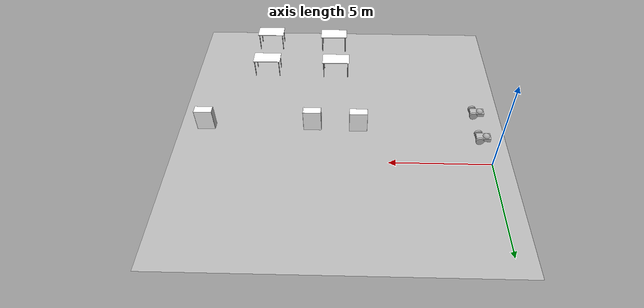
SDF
<sdf version="1.7">
 <world name="default">
  <model name="ground_plane">
   <static>1</static>
   <link name="link">
    <collision name="collision">
     <geometry><plane><normal>0 0 1</normal><size>100 100</size></plane></geometry>
     <surface>
      <contact><collide_bitmask>65535</collide_bitmask></contact>
      <friction><ode><mu>100</mu><mu2>50</mu2></ode></friction>
     </surface>
    </collision>
    <visual name="visual">
     <cast_shadows>0</cast_shadows>
     <geometry><plane><normal>0 0 1</normal><size>100 100</size></plane></geometry>
     <material>
      <ambient>0.7 0.7 0.7 1.0</ambient>
      <diffuse>0.7 0.7 0.7 1.0</diffuse>
      <specular>0.01 0.01 0.01 1.0</specular>
     </material>
    </visual>
   </link>
  </model>
  <model name="bookshelf">
   <static>1</static>
   <link name="link">
    <inertial><mass>1</mass></inertial>
    <collision name="back">
     <pose>0 0.005 0.6 0 -0 0</pose>
     <geometry><box><size>0.9 0.01 1.2</size></box></geometry>
    </collision>
    <visual name="visual1">
     <pose>0 0.005 0.6 0 -0 0</pose>
     <geometry><box><size>0.9 0.01 1.2</size></box></geometry>
     <material>
      <diffuse>1.0 1.0 1.0</diffuse>
      <specular>1.0 1.0 1.0</specular>
      <ambient>1.0 1.0 1.0</ambient>
      <pbr><metal><albedo_map>model://wall/materials/textures/wood.jpg</albedo_map></metal></pbr>
     </material>
    </visual>
    <collision name="left_side">
     <pose>0.45 -0.195 0.6 0 -0 0</pose>
     <geometry><box><size>0.02 0.4 1.2</size></box></geometry>
    </collision>
    <visual name="visual2">
     <pose>0.45 -0.195 0.6 0 -0 0</pose>
     <geometry><box><size>0.02 0.4 1.2</size></box></geometry>
     <material>
      <diffuse>1.0 1.0 1.0</diffuse>
      <specular>1.0 1.0 1.0</specular>
      <ambient>1.0 1.0 1.0</ambient>
      <pbr><metal><albedo_map>model://wall/materials/textures/wood.jpg</albedo_map></metal></pbr>
     </material>
    </visual>
    <collision name="right_side">
     <pose>-0.45 -0.195 0.6 0 -0 0</pose>
     <geometry><box><size>0.02 0.4 1.2</size></box></geometry>
    </collision>
    <visual name="visual3">
     <pose>-0.45 -0.195 0.6 0 -0 0</pose>
     <geometry><box><size>0.02 0.4 1.2</size></box></geometry>
     <material>
      <diffuse>1.0 1.0 1.0</diffuse>
      <specular>1.0 1.0 1.0</specular>
      <ambient>1.0 1.0 1.0</ambient>
      <pbr><metal><albedo_map>model://wall/materials/textures/wood.jpg</albedo_map></metal></pbr>
     </material>
    </visual>
    <collision name="bottom">
     <pose>0 -0.195 0.03 0 -0 0</pose>
     <geometry><box><size>0.88 0.4 0.06</size></box></geometry>
    </collision>
    <visual name="visual4">
     <pose>0 -0.195 0.03 0 -0 0</pose>
     <geometry><box><size>0.88 0.4 0.06</size></box></geometry>
     <material>
      <diffuse>1.0 1.0 1.0</diffuse>
      <specular>1.0 1.0 1.0</specular>
      <ambient>1.0 1.0 1.0</ambient>
      <pbr><metal><albedo_map>model://wall/materials/textures/wood.jpg</albedo_map></metal></pbr>
     </material>
    </visual>
    <collision name="top">
     <pose>0 -0.195 1.19 0 -0 0</pose>
     <geometry><box><size>0.88 0.4 0.02</size></box></geometry>
    </collision>
    <visual name="visual5">
     <pose>0 -0.195 1.19 0 -0 0</pose>
     <geometry><box><size>0.88 0.4 0.02</size></box></geometry>
     <material>
      <diffuse>1.0 1.0 1.0</diffuse>
      <specular>1.0 1.0 1.0</specular>
      <ambient>1.0 1.0 1.0</ambient>
      <pbr><metal><albedo_map>model://wall/materials/textures/wood.jpg</albedo_map></metal></pbr>
     </material>
    </visual>
    <collision name="low_shelf">
     <pose>0 -0.195 0.43 0 -0 0</pose>
     <geometry><box><size>0.88 0.4 0.02</size></box></geometry>
    </collision>
    <visual name="visual6">
     <pose>0 -0.195 0.43 0 -0 0</pose>
     <geometry><box><size>0.88 0.4 0.02</size></box></geometry>
     <material>
      <diffuse>1.0 1.0 1.0</diffuse>
      <specular>1.0 1.0 1.0</specular>
      <ambient>1.0 1.0 1.0</ambient>
      <pbr><metal><albedo_map>model://wall/materials/textures/wood.jpg</albedo_map></metal></pbr>
     </material>
    </visual>
    <collision name="high_shelf">
     <pose>0 -0.195 0.8 0 -0 0</pose>
     <geometry><box><size>0.88 0.4 0.02</size></box></geometry>
    </collision>
    <visual name="visual7">
     <pose>0 -0.195 0.8 0 -0 0</pose>
     <geometry><box><size>0.88 0.4 0.02</size></box></geometry>
     <material>
      <diffuse>1.0 1.0 1.0</diffuse>
      <specular>1.0 1.0 1.0</specular>
      <ambient>1.0 1.0 1.0</ambient>
      <pbr><metal><albedo_map>model://wall/materials/textures/wood.jpg</albedo_map></metal></pbr>
     </material>
    </visual>
   </link>
   <pose>6.47527 -2.08291 0 0 -0 0</pose>
  </model>
  <model name="bookshelf_clone">
   <static>1</static>
   <link name="link">
    <inertial><mass>1</mass></inertial>
    <collision name="back">
     <pose>0 0.005 0.6 0 -0 0</pose>
     <geometry><box><size>0.9 0.01 1.2</size></box></geometry>
    </collision>
    <visual name="visual1">
     <pose>0 0.005 0.6 0 -0 0</pose>
     <geometry><box><size>0.9 0.01 1.2</size></box></geometry>
     <material>
      <diffuse>1.0 1.0 1.0</diffuse>
      <specular>1.0 1.0 1.0</specular>
      <ambient>1.0 1.0 1.0</ambient>
      <pbr><metal><albedo_map>model://wall/materials/textures/wood.jpg</albedo_map></metal></pbr>
     </material>
    </visual>
    <collision name="left_side">
     <pose>0.45 -0.195 0.6 0 -0 0</pose>
     <geometry><box><size>0.02 0.4 1.2</size></box></geometry>
    </collision>
    <visual name="visual2">
     <pose>0.45 -0.195 0.6 0 -0 0</pose>
     <geometry><box><size>0.02 0.4 1.2</size></box></geometry>
     <material>
      <diffuse>1.0 1.0 1.0</diffuse>
      <specular>1.0 1.0 1.0</specular>
      <ambient>1.0 1.0 1.0</ambient>
      <pbr><metal><albedo_map>model://wall/materials/textures/wood.jpg</albedo_map></metal></pbr>
     </material>
    </visual>
    <collision name="right_side">
     <pose>-0.45 -0.195 0.6 0 -0 0</pose>
     <geometry><box><size>0.02 0.4 1.2</size></box></geometry>
    </collision>
    <visual name="visual3">
     <pose>-0.45 -0.195 0.6 0 -0 0</pose>
     <geometry><box><size>0.02 0.4 1.2</size></box></geometry>
     <material>
      <diffuse>1.0 1.0 1.0</diffuse>
      <specular>1.0 1.0 1.0</specular>
      <ambient>1.0 1.0 1.0</ambient>
      <pbr><metal><albedo_map>model://wall/materials/textures/wood.jpg</albedo_map></metal></pbr>
     </material>
    </visual>
    <collision name="bottom">
     <pose>0 -0.195 0.03 0 -0 0</pose>
     <geometry><box><size>0.88 0.4 0.06</size></box></geometry>
    </collision>
    <visual name="visual4">
     <pose>0 -0.195 0.03 0 -0 0</pose>
     <geometry><box><size>0.88 0.4 0.06</size></box></geometry>
     <material>
      <diffuse>1.0 1.0 1.0</diffuse>
      <specular>1.0 1.0 1.0</specular>
      <ambient>1.0 1.0 1.0</ambient>
      <pbr><metal><albedo_map>model://wall/materials/textures/wood.jpg</albedo_map></metal></pbr>
     </material>
    </visual>
    <collision name="top">
     <pose>0 -0.195 1.19 0 -0 0</pose>
     <geometry><box><size>0.88 0.4 0.02</size></box></geometry>
    </collision>
    <visual name="visual5">
     <pose>0 -0.195 1.19 0 -0 0</pose>
     <geometry><box><size>0.88 0.4 0.02</size></box></geometry>
     <material>
      <diffuse>1.0 1.0 1.0</diffuse>
      <specular>1.0 1.0 1.0</specular>
      <ambient>1.0 1.0 1.0</ambient>
      <pbr><metal><albedo_map>model://wall/materials/textures/wood.jpg</albedo_map></metal></pbr>
     </material>
    </visual>
    <collision name="low_shelf">
     <pose>0 -0.195 0.43 0 -0 0</pose>
     <geometry><box><size>0.88 0.4 0.02</size></box></geometry>
    </collision>
    <visual name="visual6">
     <pose>0 -0.195 0.43 0 -0 0</pose>
     <geometry><box><size>0.88 0.4 0.02</size></box></geometry>
     <material>
      <diffuse>1.0 1.0 1.0</diffuse>
      <specular>1.0 1.0 1.0</specular>
      <ambient>1.0 1.0 1.0</ambient>
      <pbr><metal><albedo_map>model://wall/materials/textures/wood.jpg</albedo_map></metal></pbr>
     </material>
    </visual>
    <collision name="high_shelf">
     <pose>0 -0.195 0.8 0 -0 0</pose>
     <geometry><box><size>0.88 0.4 0.02</size></box></geometry>
    </collision>
    <visual name="visual7">
     <pose>0 -0.195 0.8 0 -0 0</pose>
     <geometry><box><size>0.88 0.4 0.02</size></box></geometry>
     <material>
      <diffuse>1.0 1.0 1.0</diffuse>
      <specular>1.0 1.0 1.0</specular>
      <ambient>1.0 1.0 1.0</ambient>
      <pbr><metal><albedo_map>model://wall/materials/textures/wood.jpg</albedo_map></metal></pbr>
     </material>
    </visual>
   </link>
   <pose>8.81766 -2.1308 0 0 -0 0</pose>
  </model>
  <model name="bookshelf_clone_clone">
   <static>1</static>
   <link name="link">
    <inertial><mass>1</mass></inertial>
    <collision name="back">
     <pose>0 0.005 0.6 0 -0 0</pose>
     <geometry><box><size>0.9 0.01 1.2</size></box></geometry>
    </collision>
    <visual name="visual1">
     <pose>0 0.005 0.6 0 -0 0</pose>
     <geometry><box><size>0.9 0.01 1.2</size></box></geometry>
     <material>
      <diffuse>1.0 1.0 1.0</diffuse>
      <specular>1.0 1.0 1.0</specular>
      <ambient>1.0 1.0 1.0</ambient>
      <pbr><metal><albedo_map>model://wall/materials/textures/wood.jpg</albedo_map></metal></pbr>
     </material>
    </visual>
    <collision name="left_side">
     <pose>0.45 -0.195 0.6 0 -0 0</pose>
     <geometry><box><size>0.02 0.4 1.2</size></box></geometry>
    </collision>
    <visual name="visual2">
     <pose>0.45 -0.195 0.6 0 -0 0</pose>
     <geometry><box><size>0.02 0.4 1.2</size></box></geometry>
     <material>
      <diffuse>1.0 1.0 1.0</diffuse>
      <specular>1.0 1.0 1.0</specular>
      <ambient>1.0 1.0 1.0</ambient>
      <pbr><metal><albedo_map>model://wall/materials/textures/wood.jpg</albedo_map></metal></pbr>
     </material>
    </visual>
    <collision name="right_side">
     <pose>-0.45 -0.195 0.6 0 -0 0</pose>
     <geometry><box><size>0.02 0.4 1.2</size></box></geometry>
    </collision>
    <visual name="visual3">
     <pose>-0.45 -0.195 0.6 0 -0 0</pose>
     <geometry><box><size>0.02 0.4 1.2</size></box></geometry>
     <material>
      <diffuse>1.0 1.0 1.0</diffuse>
      <specular>1.0 1.0 1.0</specular>
      <ambient>1.0 1.0 1.0</ambient>
      <pbr><metal><albedo_map>model://wall/materials/textures/wood.jpg</albedo_map></metal></pbr>
     </material>
    </visual>
    <collision name="bottom">
     <pose>0 -0.195 0.03 0 -0 0</pose>
     <geometry><box><size>0.88 0.4 0.06</size></box></geometry>
    </collision>
    <visual name="visual4">
     <pose>0 -0.195 0.03 0 -0 0</pose>
     <geometry><box><size>0.88 0.4 0.06</size></box></geometry>
     <material>
      <diffuse>1.0 1.0 1.0</diffuse>
      <specular>1.0 1.0 1.0</specular>
      <ambient>1.0 1.0 1.0</ambient>
      <pbr><metal><albedo_map>model://wall/materials/textures/wood.jpg</albedo_map></metal></pbr>
     </material>
    </visual>
    <collision name="top">
     <pose>0 -0.195 1.19 0 -0 0</pose>
     <geometry><box><size>0.88 0.4 0.02</size></box></geometry>
    </collision>
    <visual name="visual5">
     <pose>0 -0.195 1.19 0 -0 0</pose>
     <geometry><box><size>0.88 0.4 0.02</size></box></geometry>
     <material>
      <diffuse>1.0 1.0 1.0</diffuse>
      <specular>1.0 1.0 1.0</specular>
      <ambient>1.0 1.0 1.0</ambient>
      <pbr><metal><albedo_map>model://wall/materials/textures/wood.jpg</albedo_map></metal></pbr>
     </material>
    </visual>
    <collision name="low_shelf">
     <pose>0 -0.195 0.43 0 -0 0</pose>
     <geometry><box><size>0.88 0.4 0.02</size></box></geometry>
    </collision>
    <visual name="visual6">
     <pose>0 -0.195 0.43 0 -0 0</pose>
     <geometry><box><size>0.88 0.4 0.02</size></box></geometry>
     <material>
      <diffuse>1.0 1.0 1.0</diffuse>
      <specular>1.0 1.0 1.0</specular>
      <ambient>1.0 1.0 1.0</ambient>
      <pbr><metal><albedo_map>model://wall/materials/textures/wood.jpg</albedo_map></metal></pbr>
     </material>
    </visual>
    <collision name="high_shelf">
     <pose>0 -0.195 0.8 0 -0 0</pose>
     <geometry><box><size>0.88 0.4 0.02</size></box></geometry>
    </collision>
    <visual name="visual7">
     <pose>0 -0.195 0.8 0 -0 0</pose>
     <geometry><box><size>0.88 0.4 0.02</size></box></geometry>
     <material>
      <diffuse>1.0 1.0 1.0</diffuse>
      <specular>1.0 1.0 1.0</specular>
      <ambient>1.0 1.0 1.0</ambient>
      <pbr><metal><albedo_map>model://wall/materials/textures/wood.jpg</albedo_map></metal></pbr>
     </material>
    </visual>
   </link>
   <pose>14.286 -2.07708 0 0 -0 0</pose>
  </model>
  <model name="table">
   <static>1</static>
   <link name="link">
    <collision name="surface">
     <pose>0 0 1 0 -0 0</pose>
     <geometry><box><size>1.5 0.8 0.03</size></box></geometry>
     <surface><friction><ode><mu>0.6</mu><mu2>0.6</mu2></ode></friction></surface>
    </collision>
    <visual name="visual1">
     <pose>0 0 1 0 -0 0</pose>
     <geometry><box><size>1.5 0.8 0.03</size></box></geometry>
     <material>
      <diffuse>1.0 1.0 1.0</diffuse>
      <specular>1.0 1.0 1.0</specular>
      <ambient>1.0 1.0 1.0</ambient>
      <pbr><metal><albedo_map>model://wall/materials/textures/wood.jpg</albedo_map></metal></pbr>
     </material>
    </visual>
    <collision name="front_left_leg">
     <pose>0.68 0.38 0.5 0 -0 0</pose>
     <geometry><cylinder><radius>0.02</radius><length>1</length></cylinder></geometry>
    </collision>
    <visual name="front_left_leg">
     <pose>0.68 0.38 0.5 0 -0 0</pose>
     <geometry><cylinder><radius>0.02</radius><length>1</length></cylinder></geometry>
     <material>
      <ambient>0.7 0.7 0.7 1.0</ambient>
      <diffuse>0.7 0.7 0.7 1.0</diffuse>
      <specular>0.01 0.01 0.01 1.0</specular>
     </material>
    </visual>
    <collision name="front_right_leg">
     <pose>0.68 -0.38 0.5 0 -0 0</pose>
     <geometry><cylinder><radius>0.02</radius><length>1</length></cylinder></geometry>
    </collision>
    <visual name="front_right_leg">
     <pose>0.68 -0.38 0.5 0 -0 0</pose>
     <geometry><cylinder><radius>0.02</radius><length>1</length></cylinder></geometry>
     <material>
      <ambient>0.7 0.7 0.7 1.0</ambient>
      <diffuse>0.7 0.7 0.7 1.0</diffuse>
      <specular>0.01 0.01 0.01 1.0</specular>
     </material>
    </visual>
    <collision name="back_right_leg">
     <pose>-0.68 -0.38 0.5 0 -0 0</pose>
     <geometry><cylinder><radius>0.02</radius><length>1</length></cylinder></geometry>
    </collision>
    <visual name="back_right_leg">
     <pose>-0.68 -0.38 0.5 0 -0 0</pose>
     <geometry><cylinder><radius>0.02</radius><length>1</length></cylinder></geometry>
     <material>
      <ambient>0.7 0.7 0.7 1.0</ambient>
      <diffuse>0.7 0.7 0.7 1.0</diffuse>
      <specular>0.01 0.01 0.01 1.0</specular>
     </material>
    </visual>
    <collision name="back_left_leg">
     <pose>-0.68 0.38 0.5 0 -0 0</pose>
     <geometry><cylinder><radius>0.02</radius><length>1</length></cylinder></geometry>
    </collision>
    <visual name="back_left_leg">
     <pose>-0.68 0.38 0.5 0 -0 0</pose>
     <geometry><cylinder><radius>0.02</radius><length>1</length></cylinder></geometry>
     <material>
      <ambient>0.7 0.7 0.7 1.0</ambient>
      <diffuse>0.7 0.7 0.7 1.0</diffuse>
      <specular>0.01 0.01 0.01 1.0</specular>
     </material>
    </visual>
   </link>
   <pose>7.7474 -6.72268 0 0 -0 0</pose>
  </model>
  <model name="table_clone">
   <static>1</static>
   <link name="link">
    <collision name="surface">
     <pose>0 0 1 0 -0 0</pose>
     <geometry><box><size>1.5 0.8 0.03</size></box></geometry>
     <surface><friction><ode><mu>0.6</mu><mu2>0.6</mu2></ode></friction></surface>
    </collision>
    <visual name="visual1">
     <pose>0 0 1 0 -0 0</pose>
     <geometry><box><size>1.5 0.8 0.03</size></box></geometry>
     <material>
      <diffuse>1.0 1.0 1.0</diffuse>
      <specular>1.0 1.0 1.0</specular>
      <ambient>1.0 1.0 1.0</ambient>
      <pbr><metal><albedo_map>model://wall/materials/textures/wood.jpg</albedo_map></metal></pbr>
     </material>
    </visual>
    <collision name="front_left_leg">
     <pose>0.68 0.38 0.5 0 -0 0</pose>
     <geometry><cylinder><radius>0.02</radius><length>1</length></cylinder></geometry>
    </collision>
    <visual name="front_left_leg">
     <pose>0.68 0.38 0.5 0 -0 0</pose>
     <geometry><cylinder><radius>0.02</radius><length>1</length></cylinder></geometry>
     <material>
      <ambient>0.7 0.7 0.7 1.0</ambient>
      <diffuse>0.7 0.7 0.7 1.0</diffuse>
      <specular>0.01 0.01 0.01 1.0</specular>
     </material>
    </visual>
    <collision name="front_right_leg">
     <pose>0.68 -0.38 0.5 0 -0 0</pose>
     <geometry><cylinder><radius>0.02</radius><length>1</length></cylinder></geometry>
    </collision>
    <visual name="front_right_leg">
     <pose>0.68 -0.38 0.5 0 -0 0</pose>
     <geometry><cylinder><radius>0.02</radius><length>1</length></cylinder></geometry>
     <material>
      <ambient>0.7 0.7 0.7 1.0</ambient>
      <diffuse>0.7 0.7 0.7 1.0</diffuse>
      <specular>0.01 0.01 0.01 1.0</specular>
     </material>
    </visual>
    <collision name="back_right_leg">
     <pose>-0.68 -0.38 0.5 0 -0 0</pose>
     <geometry><cylinder><radius>0.02</radius><length>1</length></cylinder></geometry>
    </collision>
    <visual name="back_right_leg">
     <pose>-0.68 -0.38 0.5 0 -0 0</pose>
     <geometry><cylinder><radius>0.02</radius><length>1</length></cylinder></geometry>
     <material>
      <ambient>0.7 0.7 0.7 1.0</ambient>
      <diffuse>0.7 0.7 0.7 1.0</diffuse>
      <specular>0.01 0.01 0.01 1.0</specular>
     </material>
    </visual>
    <collision name="back_left_leg">
     <pose>-0.68 0.38 0.5 0 -0 0</pose>
     <geometry><cylinder><radius>0.02</radius><length>1</length></cylinder></geometry>
    </collision>
    <visual name="back_left_leg">
     <pose>-0.68 0.38 0.5 0 -0 0</pose>
     <geometry><cylinder><radius>0.02</radius><length>1</length></cylinder></geometry>
     <material>
      <ambient>0.7 0.7 0.7 1.0</ambient>
      <diffuse>0.7 0.7 0.7 1.0</diffuse>
      <specular>0.01 0.01 0.01 1.0</specular>
     </material>
    </visual>
   </link>
   <pose>7.93352 -9.12474 0 0 -0 0</pose>
  </model>
  <model name="table_clone_0">
   <static>1</static>
   <link name="link">
    <collision name="surface">
     <pose>0 0 1 0 -0 0</pose>
     <geometry><box><size>1.5 0.8 0.03</size></box></geometry>
     <surface><friction><ode><mu>0.6</mu><mu2>0.6</mu2></ode></friction></surface>
    </collision>
    <visual name="visual1">
     <pose>0 0 1 0 -0 0</pose>
     <geometry><box><size>1.5 0.8 0.03</size></box></geometry>
     <material>
      <diffuse>1.0 1.0 1.0</diffuse>
      <specular>1.0 1.0 1.0</specular>
      <ambient>1.0 1.0 1.0</ambient>
      <pbr><metal><albedo_map>model://wall/materials/textures/wood.jpg</albedo_map></metal></pbr>
     </material>
    </visual>
    <collision name="front_left_leg">
     <pose>0.68 0.38 0.5 0 -0 0</pose>
     <geometry><cylinder><radius>0.02</radius><length>1</length></cylinder></geometry>
    </collision>
    <visual name="front_left_leg">
     <pose>0.68 0.38 0.5 0 -0 0</pose>
     <geometry><cylinder><radius>0.02</radius><length>1</length></cylinder></geometry>
     <material>
      <ambient>0.7 0.7 0.7 1.0</ambient>
      <diffuse>0.7 0.7 0.7 1.0</diffuse>
      <specular>0.01 0.01 0.01 1.0</specular>
     </material>
    </visual>
    <collision name="front_right_leg">
     <pose>0.68 -0.38 0.5 0 -0 0</pose>
     <geometry><cylinder><radius>0.02</radius><length>1</length></cylinder></geometry>
    </collision>
    <visual name="front_right_leg">
     <pose>0.68 -0.38 0.5 0 -0 0</pose>
     <geometry><cylinder><radius>0.02</radius><length>1</length></cylinder></geometry>
     <material>
      <ambient>0.7 0.7 0.7 1.0</ambient>
      <diffuse>0.7 0.7 0.7 1.0</diffuse>
      <specular>0.01 0.01 0.01 1.0</specular>
     </material>
    </visual>
    <collision name="back_right_leg">
     <pose>-0.68 -0.38 0.5 0 -0 0</pose>
     <geometry><cylinder><radius>0.02</radius><length>1</length></cylinder></geometry>
    </collision>
    <visual name="back_right_leg">
     <pose>-0.68 -0.38 0.5 0 -0 0</pose>
     <geometry><cylinder><radius>0.02</radius><length>1</length></cylinder></geometry>
     <material>
      <ambient>0.7 0.7 0.7 1.0</ambient>
      <diffuse>0.7 0.7 0.7 1.0</diffuse>
      <specular>0.01 0.01 0.01 1.0</specular>
     </material>
    </visual>
    <collision name="back_left_leg">
     <pose>-0.68 0.38 0.5 0 -0 0</pose>
     <geometry><cylinder><radius>0.02</radius><length>1</length></cylinder></geometry>
    </collision>
    <visual name="back_left_leg">
     <pose>-0.68 0.38 0.5 0 -0 0</pose>
     <geometry><cylinder><radius>0.02</radius><length>1</length></cylinder></geometry>
     <material>
      <ambient>0.7 0.7 0.7 1.0</ambient>
      <diffuse>0.7 0.7 0.7 1.0</diffuse>
      <specular>0.01 0.01 0.01 1.0</specular>
     </material>
    </visual>
   </link>
   <pose>11.6393 -6.76374 0 0 -0 0</pose>
  </model>
  <model name="table_clone_0_clone">
   <static>1</static>
   <link name="link">
    <collision name="surface">
     <pose>0 0 1 0 -0 0</pose>
     <geometry><box><size>1.5 0.8 0.03</size></box></geometry>
     <surface><friction><ode><mu>0.6</mu><mu2>0.6</mu2></ode></friction></surface>
    </collision>
    <visual name="visual1">
     <pose>0 0 1 0 -0 0</pose>
     <geometry><box><size>1.5 0.8 0.03</size></box></geometry>
     <material>
      <diffuse>1.0 1.0 1.0</diffuse>
      <specular>1.0 1.0 1.0</specular>
      <ambient>1.0 1.0 1.0</ambient>
      <pbr><metal><albedo_map>model://wall/materials/textures/wood.jpg</albedo_map></metal></pbr>
     </material>
    </visual>
    <collision name="front_left_leg">
     <pose>0.68 0.38 0.5 0 -0 0</pose>
     <geometry><cylinder><radius>0.02</radius><length>1</length></cylinder></geometry>
    </collision>
    <visual name="front_left_leg">
     <pose>0.68 0.38 0.5 0 -0 0</pose>
     <geometry><cylinder><radius>0.02</radius><length>1</length></cylinder></geometry>
     <material>
      <ambient>0.7 0.7 0.7 1.0</ambient>
      <diffuse>0.7 0.7 0.7 1.0</diffuse>
      <specular>0.01 0.01 0.01 1.0</specular>
     </material>
    </visual>
    <collision name="front_right_leg">
     <pose>0.68 -0.38 0.5 0 -0 0</pose>
     <geometry><cylinder><radius>0.02</radius><length>1</length></cylinder></geometry>
    </collision>
    <visual name="front_right_leg">
     <pose>0.68 -0.38 0.5 0 -0 0</pose>
     <geometry><cylinder><radius>0.02</radius><length>1</length></cylinder></geometry>
     <material>
      <ambient>0.7 0.7 0.7 1.0</ambient>
      <diffuse>0.7 0.7 0.7 1.0</diffuse>
      <specular>0.01 0.01 0.01 1.0</specular>
     </material>
    </visual>
    <collision name="back_right_leg">
     <pose>-0.68 -0.38 0.5 0 -0 0</pose>
     <geometry><cylinder><radius>0.02</radius><length>1</length></cylinder></geometry>
    </collision>
    <visual name="back_right_leg">
     <pose>-0.68 -0.38 0.5 0 -0 0</pose>
     <geometry><cylinder><radius>0.02</radius><length>1</length></cylinder></geometry>
     <material>
      <ambient>0.7 0.7 0.7 1.0</ambient>
      <diffuse>0.7 0.7 0.7 1.0</diffuse>
      <specular>0.01 0.01 0.01 1.0</specular>
     </material>
    </visual>
    <collision name="back_left_leg">
     <pose>-0.68 0.38 0.5 0 -0 0</pose>
     <geometry><cylinder><radius>0.02</radius><length>1</length></cylinder></geometry>
    </collision>
    <visual name="back_left_leg">
     <pose>-0.68 0.38 0.5 0 -0 0</pose>
     <geometry><cylinder><radius>0.02</radius><length>1</length></cylinder></geometry>
     <material>
      <ambient>0.7 0.7 0.7 1.0</ambient>
      <diffuse>0.7 0.7 0.7 1.0</diffuse>
      <specular>0.01 0.01 0.01 1.0</specular>
     </material>
    </visual>
   </link>
   <pose>11.6926 -9.2738 0 0 -0 0</pose>
  </model>
  <model name="3WheelRobot">
   <link name="link_0">
    <inertial>
     <mass>1</mass>
     <inertia>
      <ixx>0.166667</ixx>
      <ixy>0</ixy>
      <ixz>0</ixz>
      <iyy>0.166667</iyy>
      <iyz>0</iyz>
      <izz>0.166667</izz>
     </inertia>
    </inertial>
    <pose>0.0375 -0 -0.005 0 -0 0</pose>
    <visual name="visual">
     <geometry><box><size>0.7 0.4 0.2</size></box></geometry>
     <material>
      <lighting>1</lighting>
      <ambient>0.7 0.7 0.7 1.0</ambient>
      <diffuse>0.7 0.7 0.7 1.0</diffuse>
      <specular>0.01 0.01 0.01 1.0</specular>
      <shader type="pixel"><normal_map>__default__</normal_map></shader>
      <ambient>0.3 0.3 0.3 1</ambient>
      <diffuse>0.7 0.7 0.7 1</diffuse>
      <specular>0.01 0.01 0.01 1</specular>
      <emissive>0 0 0 1</emissive>
     </material>
    </visual>
    <collision name="collision">
     <geometry><box><size>0.7 0.4 0.2</size></box></geometry>
     <surface>
      <friction>
       <ode><mu>1</mu><mu2>1</mu2><fdir1>0 0 0</fdir1><slip1>0</slip1><slip2>0</slip2></ode>
       <torsional>
        <coefficient>1</coefficient>
        <patch_radius>0</patch_radius>
        <surface_radius>0</surface_radius>
        <use_patch_radius>1</use_patch_radius>
        <ode><slip>0</slip></ode>
       </torsional>
      </friction>
      <bounce><restitution_coefficient>0</restitution_coefficient><threshold>1e+06</threshold></bounce>
      <contact>
       <collide_without_contact>0</collide_without_contact>
       <collide_without_contact_bitmask>1</collide_without_contact_bitmask>
       <collide_bitmask>1</collide_bitmask>
       <ode>
        <soft_cfm>0</soft_cfm>
        <soft_erp>0.2</soft_erp>
        <kp>1e+13</kp>
        <kd>1</kd>
        <max_vel>0.01</max_vel>
        <min_depth>0</min_depth>
       </ode>
       <bullet>
        <split_impulse>1</split_impulse>
        <split_impulse_penetration_threshold>-0.01</split_impulse_penetration_threshold>
        <soft_cfm>0</soft_cfm>
        <soft_erp>0.2</soft_erp>
        <kp>1e+13</kp>
        <kd>1</kd>
       </bullet>
      </contact>
     </surface>
    </collision>
   </link>
   <link name="link_1">
    <inertial>
     <mass>1</mass>
     <inertia><ixx>0.145833</ixx><ixy>0</ixy><ixz>0</ixz><iyy>0.145833</iyy><iyz>0</iyz><izz>0.125</izz></inertia>
    </inertial>
    <pose>0.2375 -0.250019 -0.005 1.5707 -0 0</pose>
    <visual name="visual">
     <geometry><cylinder><radius>0.2</radius><length>0.1</length></cylinder></geometry>
     <material>
      <lighting>1</lighting>
      <ambient>0.7 0.7 0.7 1.0</ambient>
      <diffuse>0.7 0.7 0.7 1.0</diffuse>
      <specular>0.01 0.01 0.01 1.0</specular>
      <shader type="pixel"><normal_map>__default__</normal_map></shader>
      <ambient>0.3 0.3 0.3 1</ambient>
      <diffuse>0.7 0.7 0.7 1</diffuse>
      <specular>0.01 0.01 0.01 1</specular>
      <emissive>0 0 0 1</emissive>
     </material>
    </visual>
    <collision name="collision">
     <geometry><cylinder><radius>0.2</radius><length>0.1</length></cylinder></geometry>
     <surface>
      <friction>
       <ode><mu>1</mu><mu2>1</mu2><fdir1>0 0 0</fdir1><slip1>0</slip1><slip2>0</slip2></ode>
       <torsional>
        <coefficient>1</coefficient>
        <patch_radius>0</patch_radius>
        <surface_radius>0</surface_radius>
        <use_patch_radius>1</use_patch_radius>
        <ode><slip>0</slip></ode>
       </torsional>
      </friction>
      <bounce><restitution_coefficient>0</restitution_coefficient><threshold>1e+06</threshold></bounce>
      <contact>
       <collide_without_contact>0</collide_without_contact>
       <collide_without_contact_bitmask>1</collide_without_contact_bitmask>
       <collide_bitmask>1</collide_bitmask>
       <ode>
        <soft_cfm>0</soft_cfm>
        <soft_erp>0.2</soft_erp>
        <kp>1e+13</kp>
        <kd>1</kd>
        <max_vel>0.01</max_vel>
        <min_depth>0</min_depth>
       </ode>
       <bullet>
        <split_impulse>1</split_impulse>
        <split_impulse_penetration_threshold>-0.01</split_impulse_penetration_threshold>
        <soft_cfm>0</soft_cfm>
        <soft_erp>0.2</soft_erp>
        <kp>1e+13</kp>
        <kd>1</kd>
       </bullet>
      </contact>
     </surface>
    </collision>
   </link>
   <link name="link_1_clone">
    <inertial>
     <mass>1</mass>
     <inertia><ixx>0.145833</ixx><ixy>0</ixy><ixz>0</ixz><iyy>0.145833</iyy><iyz>0</iyz><izz>0.125</izz></inertia>
    </inertial>
    <pose>0.2375 0.250019 -0.005 1.5707 -0 0</pose>
    <visual name="visual">
     <geometry><cylinder><radius>0.2</radius><length>0.1</length></cylinder></geometry>
     <material>
      <lighting>1</lighting>
      <ambient>0.7 0.7 0.7 1.0</ambient>
      <diffuse>0.7 0.7 0.7 1.0</diffuse>
      <specular>0.01 0.01 0.01 1.0</specular>
      <shader type="pixel"><normal_map>__default__</normal_map></shader>
      <ambient>0.3 0.3 0.3 1</ambient>
      <diffuse>0.7 0.7 0.7 1</diffuse>
      <specular>0.01 0.01 0.01 1</specular>
      <emissive>0 0 0 1</emissive>
     </material>
    </visual>
    <collision name="collision">
     <geometry><cylinder><radius>0.2</radius><length>0.1</length></cylinder></geometry>
     <surface>
      <friction>
       <ode><mu>1</mu><mu2>1</mu2><fdir1>0 0 0</fdir1><slip1>0</slip1><slip2>0</slip2></ode>
       <torsional>
        <coefficient>1</coefficient>
        <patch_radius>0</patch_radius>
        <surface_radius>0</surface_radius>
        <use_patch_radius>1</use_patch_radius>
        <ode><slip>0</slip></ode>
       </torsional>
      </friction>
      <bounce><restitution_coefficient>0</restitution_coefficient><threshold>1e+06</threshold></bounce>
      <contact>
       <collide_without_contact>0</collide_without_contact>
       <collide_without_contact_bitmask>1</collide_without_contact_bitmask>
       <collide_bitmask>1</collide_bitmask>
       <ode>
        <soft_cfm>0</soft_cfm>
        <soft_erp>0.2</soft_erp>
        <kp>1e+13</kp>
        <kd>1</kd>
        <max_vel>0.01</max_vel>
        <min_depth>0</min_depth>
       </ode>
       <bullet>
        <split_impulse>1</split_impulse>
        <split_impulse_penetration_threshold>-0.01</split_impulse_penetration_threshold>
        <soft_cfm>0</soft_cfm>
        <soft_erp>0.2</soft_erp>
        <kp>1e+13</kp>
        <kd>1</kd>
       </bullet>
      </contact>
     </surface>
    </collision>
   </link>
   <link name="link_3">
    <inertial>
     <mass>1</mass>
     <inertia><ixx>0.1</ixx><ixy>0</ixy><ixz>0</ixz><iyy>0.1</iyy><iyz>0</iyz><izz>0.1</izz></inertia>
    </inertial>
    <pose>-0.1125 -0 0.015 0 -0 0</pose>
    <visual name="visual">
     <geometry><sphere><radius>0.2</radius></sphere></geometry>
     <material>
      <lighting>1</lighting>
      <ambient>0.7 0.7 0.7 1.0</ambient>
      <diffuse>0.7 0.7 0.7 1.0</diffuse>
      <specular>0.01 0.01 0.01 1.0</specular>
      <shader type="pixel"><normal_map>__default__</normal_map></shader>
      <ambient>0.3 0.3 0.3 1</ambient>
      <diffuse>0.7 0.7 0.7 1</diffuse>
      <specular>0.01 0.01 0.01 1</specular>
      <emissive>0 0 0 1</emissive>
     </material>
    </visual>
    <collision name="collision">
     <geometry><sphere><radius>0.2</radius></sphere></geometry>
     <surface>
      <friction>
       <ode><mu>1</mu><mu2>1</mu2><fdir1>0 0 0</fdir1><slip1>0</slip1><slip2>0</slip2></ode>
       <torsional>
        <coefficient>1</coefficient>
        <patch_radius>0</patch_radius>
        <surface_radius>0</surface_radius>
        <use_patch_radius>1</use_patch_radius>
        <ode><slip>0</slip></ode>
       </torsional>
      </friction>
      <bounce><restitution_coefficient>0</restitution_coefficient><threshold>1e+06</threshold></bounce>
      <contact>
       <collide_without_contact>0</collide_without_contact>
       <collide_without_contact_bitmask>1</collide_without_contact_bitmask>
       <collide_bitmask>1</collide_bitmask>
       <ode>
        <soft_cfm>0</soft_cfm>
        <soft_erp>0.2</soft_erp>
        <kp>1e+13</kp>
        <kd>1</kd>
        <max_vel>0.01</max_vel>
        <min_depth>0</min_depth>
       </ode>
       <bullet>
        <split_impulse>1</split_impulse>
        <split_impulse_penetration_threshold>-0.01</split_impulse_penetration_threshold>
        <soft_cfm>0</soft_cfm>
        <soft_erp>0.2</soft_erp>
        <kp>1e+13</kp>
        <kd>1</kd>
       </bullet>
      </contact>
     </surface>
    </collision>
   </link>
   <joint name="link_0_JOINT_3" type="revolute">
    <parent>link_0</parent>
    <child>link_1</child>
    <axis>
     <xyz>0 0 1</xyz>
     <use_parent_model_frame>0</use_parent_model_frame>
     <limit>
      <lower>-1.79769e+308</lower>
      <upper>1.79769e+308</upper>
      <effort>-1</effort>
      <velocity>-1</velocity>
     </limit>
     <dynamics>
      <spring_reference>0</spring_reference>
      <spring_stiffness>0</spring_stiffness>
      <damping>0</damping>
     </dynamics>
    </axis>
    <physics>
     <ode><limit><cfm>0</cfm><erp>0.2</erp></limit><suspension><cfm>0</cfm><erp>0.2</erp></suspension></ode>
    </physics>
   </joint>
   <joint name="link_0_JOINT_5" type="ball">
    <parent>link_0</parent>
    <child>link_3</child>
    <physics>
     <ode><limit><cfm>0</cfm><erp>0.2</erp></limit><suspension><cfm>0</cfm><erp>0.2</erp></suspension></ode>
    </physics>
   </joint>
   <joint name="link_1_clone_JOINT_4" type="revolute">
    <parent>link_0</parent>
    <child>link_1_clone</child>
    <axis>
     <xyz>0 0 1</xyz>
     <use_parent_model_frame>0</use_parent_model_frame>
     <limit>
      <lower>-1.79769e+308</lower>
      <upper>1.79769e+308</upper>
      <effort>-1</effort>
      <velocity>-1</velocity>
     </limit>
     <dynamics>
      <spring_reference>0</spring_reference>
      <spring_stiffness>0</spring_stiffness>
      <damping>0</damping>
     </dynamics>
    </axis>
    <physics>
     <ode><limit><cfm>0</cfm><erp>0.2</erp></limit><suspension><cfm>0</cfm><erp>0.2</erp></suspension></ode>
    </physics>
   </joint>
   <static>0</static>
   <pose>0.278098 -1.31954 0.505 0 -0 0</pose>
  </model>
  <model name="3WheelRobot_clone">
   <link name="link_0">
    <inertial>
     <mass>1</mass>
     <inertia>
      <ixx>0.166667</ixx>
      <ixy>0</ixy>
      <ixz>0</ixz>
      <iyy>0.166667</iyy>
      <iyz>0</iyz>
      <izz>0.166667</izz>
     </inertia>
    </inertial>
    <pose>0.0375 -0 -0.005 0 -0 0</pose>
    <visual name="visual">
     <geometry><box><size>0.7 0.4 0.2</size></box></geometry>
     <material>
      <lighting>1</lighting>
      <ambient>0.7 0.7 0.7 1.0</ambient>
      <diffuse>0.7 0.7 0.7 1.0</diffuse>
      <specular>0.01 0.01 0.01 1.0</specular>
      <shader type="pixel"><normal_map>__default__</normal_map></shader>
      <ambient>0.3 0.3 0.3 1</ambient>
      <diffuse>0.7 0.7 0.7 1</diffuse>
      <specular>0.01 0.01 0.01 1</specular>
      <emissive>0 0 0 1</emissive>
     </material>
    </visual>
    <collision name="collision">
     <geometry><box><size>0.7 0.4 0.2</size></box></geometry>
     <surface>
      <friction>
       <ode><mu>1</mu><mu2>1</mu2><fdir1>0 0 0</fdir1><slip1>0</slip1><slip2>0</slip2></ode>
       <torsional>
        <coefficient>1</coefficient>
        <patch_radius>0</patch_radius>
        <surface_radius>0</surface_radius>
        <use_patch_radius>1</use_patch_radius>
        <ode><slip>0</slip></ode>
       </torsional>
      </friction>
      <bounce><restitution_coefficient>0</restitution_coefficient><threshold>1e+06</threshold></bounce>
      <contact>
       <collide_without_contact>0</collide_without_contact>
       <collide_without_contact_bitmask>1</collide_without_contact_bitmask>
       <collide_bitmask>1</collide_bitmask>
       <ode>
        <soft_cfm>0</soft_cfm>
        <soft_erp>0.2</soft_erp>
        <kp>1e+13</kp>
        <kd>1</kd>
        <max_vel>0.01</max_vel>
        <min_depth>0</min_depth>
       </ode>
       <bullet>
        <split_impulse>1</split_impulse>
        <split_impulse_penetration_threshold>-0.01</split_impulse_penetration_threshold>
        <soft_cfm>0</soft_cfm>
        <soft_erp>0.2</soft_erp>
        <kp>1e+13</kp>
        <kd>1</kd>
       </bullet>
      </contact>
     </surface>
    </collision>
   </link>
   <link name="link_1">
    <inertial>
     <mass>1</mass>
     <inertia><ixx>0.145833</ixx><ixy>0</ixy><ixz>0</ixz><iyy>0.145833</iyy><iyz>0</iyz><izz>0.125</izz></inertia>
    </inertial>
    <pose>0.2375 -0.250019 -0.005 1.5707 -0 0</pose>
    <visual name="visual">
     <geometry><cylinder><radius>0.2</radius><length>0.1</length></cylinder></geometry>
     <material>
      <lighting>1</lighting>
      <ambient>0.7 0.7 0.7 1.0</ambient>
      <diffuse>0.7 0.7 0.7 1.0</diffuse>
      <specular>0.01 0.01 0.01 1.0</specular>
      <shader type="pixel"><normal_map>__default__</normal_map></shader>
      <ambient>0.3 0.3 0.3 1</ambient>
      <diffuse>0.7 0.7 0.7 1</diffuse>
      <specular>0.01 0.01 0.01 1</specular>
      <emissive>0 0 0 1</emissive>
     </material>
    </visual>
    <collision name="collision">
     <geometry><cylinder><radius>0.2</radius><length>0.1</length></cylinder></geometry>
     <surface>
      <friction>
       <ode><mu>1</mu><mu2>1</mu2><fdir1>0 0 0</fdir1><slip1>0</slip1><slip2>0</slip2></ode>
       <torsional>
        <coefficient>1</coefficient>
        <patch_radius>0</patch_radius>
        <surface_radius>0</surface_radius>
        <use_patch_radius>1</use_patch_radius>
        <ode><slip>0</slip></ode>
       </torsional>
      </friction>
      <bounce><restitution_coefficient>0</restitution_coefficient><threshold>1e+06</threshold></bounce>
      <contact>
       <collide_without_contact>0</collide_without_contact>
       <collide_without_contact_bitmask>1</collide_without_contact_bitmask>
       <collide_bitmask>1</collide_bitmask>
       <ode>
        <soft_cfm>0</soft_cfm>
        <soft_erp>0.2</soft_erp>
        <kp>1e+13</kp>
        <kd>1</kd>
        <max_vel>0.01</max_vel>
        <min_depth>0</min_depth>
       </ode>
       <bullet>
        <split_impulse>1</split_impulse>
        <split_impulse_penetration_threshold>-0.01</split_impulse_penetration_threshold>
        <soft_cfm>0</soft_cfm>
        <soft_erp>0.2</soft_erp>
        <kp>1e+13</kp>
        <kd>1</kd>
       </bullet>
      </contact>
     </surface>
    </collision>
   </link>
   <link name="link_1_clone">
    <inertial>
     <mass>1</mass>
     <inertia><ixx>0.145833</ixx><ixy>0</ixy><ixz>0</ixz><iyy>0.145833</iyy><iyz>0</iyz><izz>0.125</izz></inertia>
    </inertial>
    <pose>0.2375 0.250019 -0.005 1.5707 -0 0</pose>
    <visual name="visual">
     <geometry><cylinder><radius>0.2</radius><length>0.1</length></cylinder></geometry>
     <material>
      <lighting>1</lighting>
      <ambient>0.7 0.7 0.7 1.0</ambient>
      <diffuse>0.7 0.7 0.7 1.0</diffuse>
      <specular>0.01 0.01 0.01 1.0</specular>
      <shader type="pixel"><normal_map>__default__</normal_map></shader>
      <ambient>0.3 0.3 0.3 1</ambient>
      <diffuse>0.7 0.7 0.7 1</diffuse>
      <specular>0.01 0.01 0.01 1</specular>
      <emissive>0 0 0 1</emissive>
     </material>
    </visual>
    <collision name="collision">
     <geometry><cylinder><radius>0.2</radius><length>0.1</length></cylinder></geometry>
     <surface>
      <friction>
       <ode><mu>1</mu><mu2>1</mu2><fdir1>0 0 0</fdir1><slip1>0</slip1><slip2>0</slip2></ode>
       <torsional>
        <coefficient>1</coefficient>
        <patch_radius>0</patch_radius>
        <surface_radius>0</surface_radius>
        <use_patch_radius>1</use_patch_radius>
        <ode><slip>0</slip></ode>
       </torsional>
      </friction>
      <bounce><restitution_coefficient>0</restitution_coefficient><threshold>1e+06</threshold></bounce>
      <contact>
       <collide_without_contact>0</collide_without_contact>
       <collide_without_contact_bitmask>1</collide_without_contact_bitmask>
       <collide_bitmask>1</collide_bitmask>
       <ode>
        <soft_cfm>0</soft_cfm>
        <soft_erp>0.2</soft_erp>
        <kp>1e+13</kp>
        <kd>1</kd>
        <max_vel>0.01</max_vel>
        <min_depth>0</min_depth>
       </ode>
       <bullet>
        <split_impulse>1</split_impulse>
        <split_impulse_penetration_threshold>-0.01</split_impulse_penetration_threshold>
        <soft_cfm>0</soft_cfm>
        <soft_erp>0.2</soft_erp>
        <kp>1e+13</kp>
        <kd>1</kd>
       </bullet>
      </contact>
     </surface>
    </collision>
   </link>
   <link name="link_3">
    <inertial>
     <mass>1</mass>
     <inertia><ixx>0.1</ixx><ixy>0</ixy><ixz>0</ixz><iyy>0.1</iyy><iyz>0</iyz><izz>0.1</izz></inertia>
    </inertial>
    <pose>-0.1125 -0 0.015 0 -0 0</pose>
    <visual name="visual">
     <geometry><sphere><radius>0.2</radius></sphere></geometry>
     <material>
      <lighting>1</lighting>
      <ambient>0.7 0.7 0.7 1.0</ambient>
      <diffuse>0.7 0.7 0.7 1.0</diffuse>
      <specular>0.01 0.01 0.01 1.0</specular>
      <shader type="pixel"><normal_map>__default__</normal_map></shader>
      <ambient>0.3 0.3 0.3 1</ambient>
      <diffuse>0.7 0.7 0.7 1</diffuse>
      <specular>0.01 0.01 0.01 1</specular>
      <emissive>0 0 0 1</emissive>
     </material>
    </visual>
    <collision name="collision">
     <geometry><sphere><radius>0.2</radius></sphere></geometry>
     <surface>
      <friction>
       <ode><mu>1</mu><mu2>1</mu2><fdir1>0 0 0</fdir1><slip1>0</slip1><slip2>0</slip2></ode>
       <torsional>
        <coefficient>1</coefficient>
        <patch_radius>0</patch_radius>
        <surface_radius>0</surface_radius>
        <use_patch_radius>1</use_patch_radius>
        <ode><slip>0</slip></ode>
       </torsional>
      </friction>
      <bounce><restitution_coefficient>0</restitution_coefficient><threshold>1e+06</threshold></bounce>
      <contact>
       <collide_without_contact>0</collide_without_contact>
       <collide_without_contact_bitmask>1</collide_without_contact_bitmask>
       <collide_bitmask>1</collide_bitmask>
       <ode>
        <soft_cfm>0</soft_cfm>
        <soft_erp>0.2</soft_erp>
        <kp>1e+13</kp>
        <kd>1</kd>
        <max_vel>0.01</max_vel>
        <min_depth>0</min_depth>
       </ode>
       <bullet>
        <split_impulse>1</split_impulse>
        <split_impulse_penetration_threshold>-0.01</split_impulse_penetration_threshold>
        <soft_cfm>0</soft_cfm>
        <soft_erp>0.2</soft_erp>
        <kp>1e+13</kp>
        <kd>1</kd>
       </bullet>
      </contact>
     </surface>
    </collision>
   </link>
   <joint name="link_0_JOINT_3" type="revolute">
    <parent>link_0</parent>
    <child>link_1</child>
    <axis>
     <xyz>0 0 1</xyz>
     <use_parent_model_frame>0</use_parent_model_frame>
     <limit>
      <lower>-1.79769e+308</lower>
      <upper>1.79769e+308</upper>
      <effort>-1</effort>
      <velocity>-1</velocity>
     </limit>
     <dynamics>
      <spring_reference>0</spring_reference>
      <spring_stiffness>0</spring_stiffness>
      <damping>0</damping>
     </dynamics>
    </axis>
    <physics>
     <ode><limit><cfm>0</cfm><erp>0.2</erp></limit><suspension><cfm>0</cfm><erp>0.2</erp></suspension></ode>
    </physics>
   </joint>
   <joint name="link_0_JOINT_5" type="ball">
    <parent>link_0</parent>
    <child>link_3</child>
    <physics>
     <ode><limit><cfm>0</cfm><erp>0.2</erp></limit><suspension><cfm>0</cfm><erp>0.2</erp></suspension></ode>
    </physics>
   </joint>
   <joint name="link_1_clone_JOINT_4" type="revolute">
    <parent>link_0</parent>
    <child>link_1_clone</child>
    <axis>
     <xyz>0 0 1</xyz>
     <use_parent_model_frame>0</use_parent_model_frame>
     <limit>
      <lower>-1.79769e+308</lower>
      <upper>1.79769e+308</upper>
      <effort>-1</effort>
      <velocity>-1</velocity>
     </limit>
     <dynamics>
      <spring_reference>0</spring_reference>
      <spring_stiffness>0</spring_stiffness>
      <damping>0</damping>
     </dynamics>
    </axis>
    <physics>
     <ode><limit><cfm>0</cfm><erp>0.2</erp></limit><suspension><cfm>0</cfm><erp>0.2</erp></suspension></ode>
    </physics>
   </joint>
   <static>0</static>
   <pose>0.318153 -3.06874 0.505 0 -0 0</pose>
  </model>
 </world>
</sdf>
